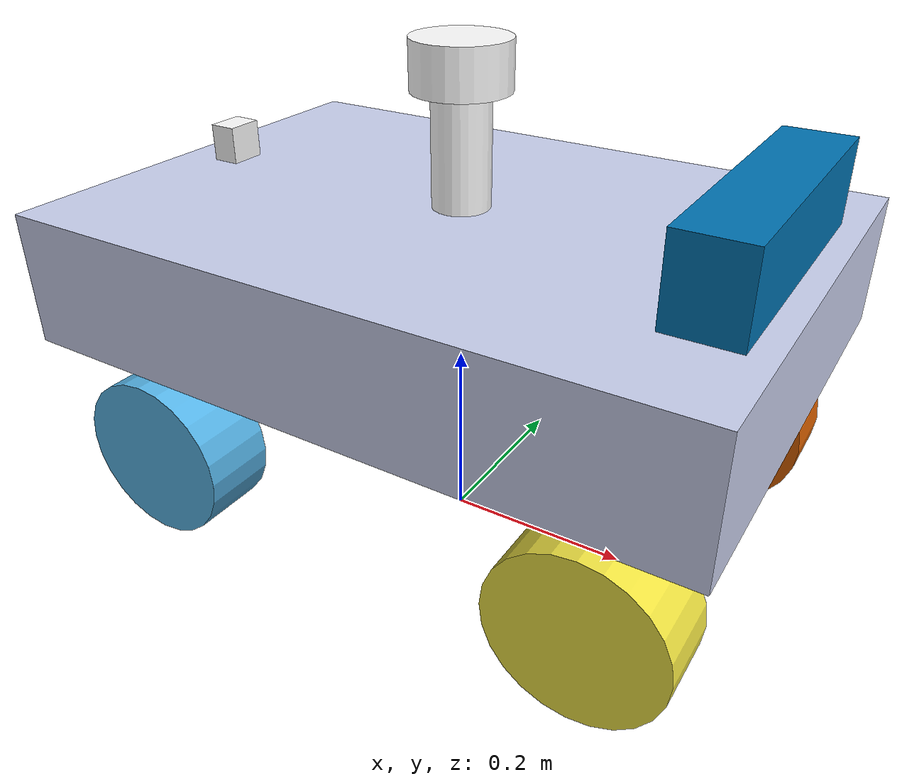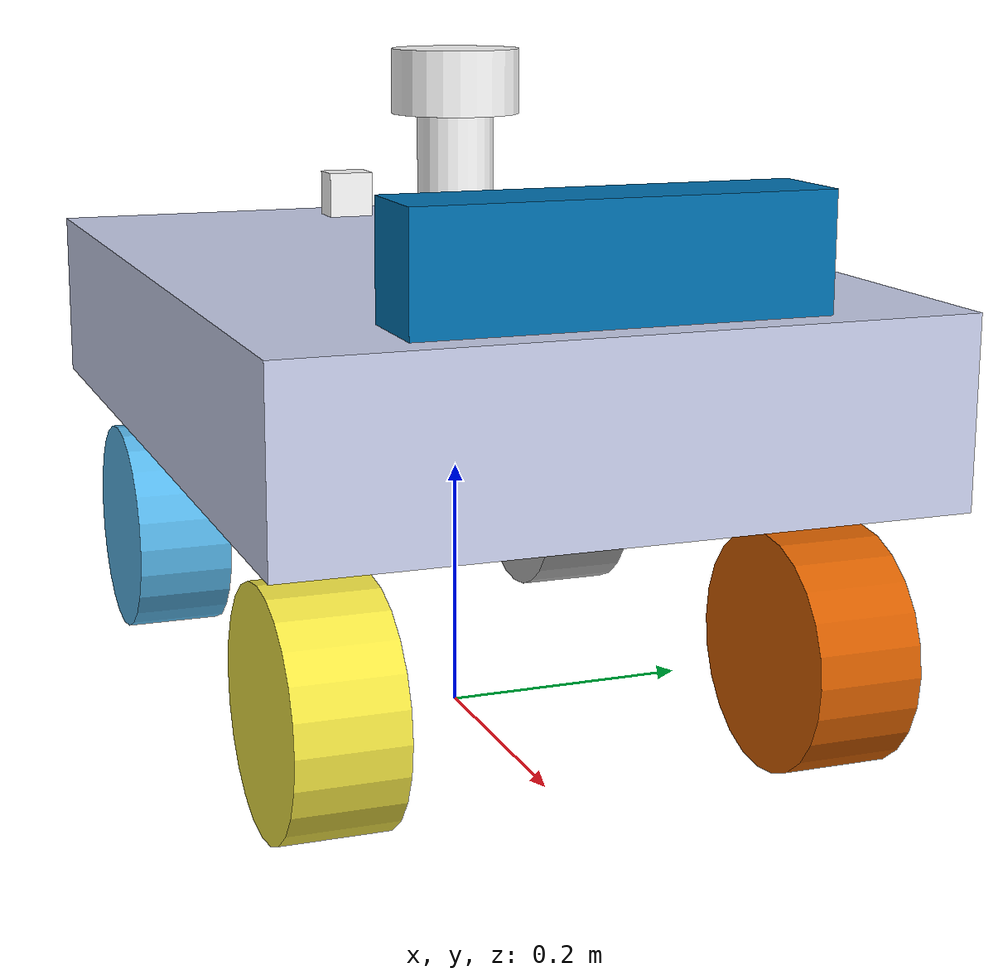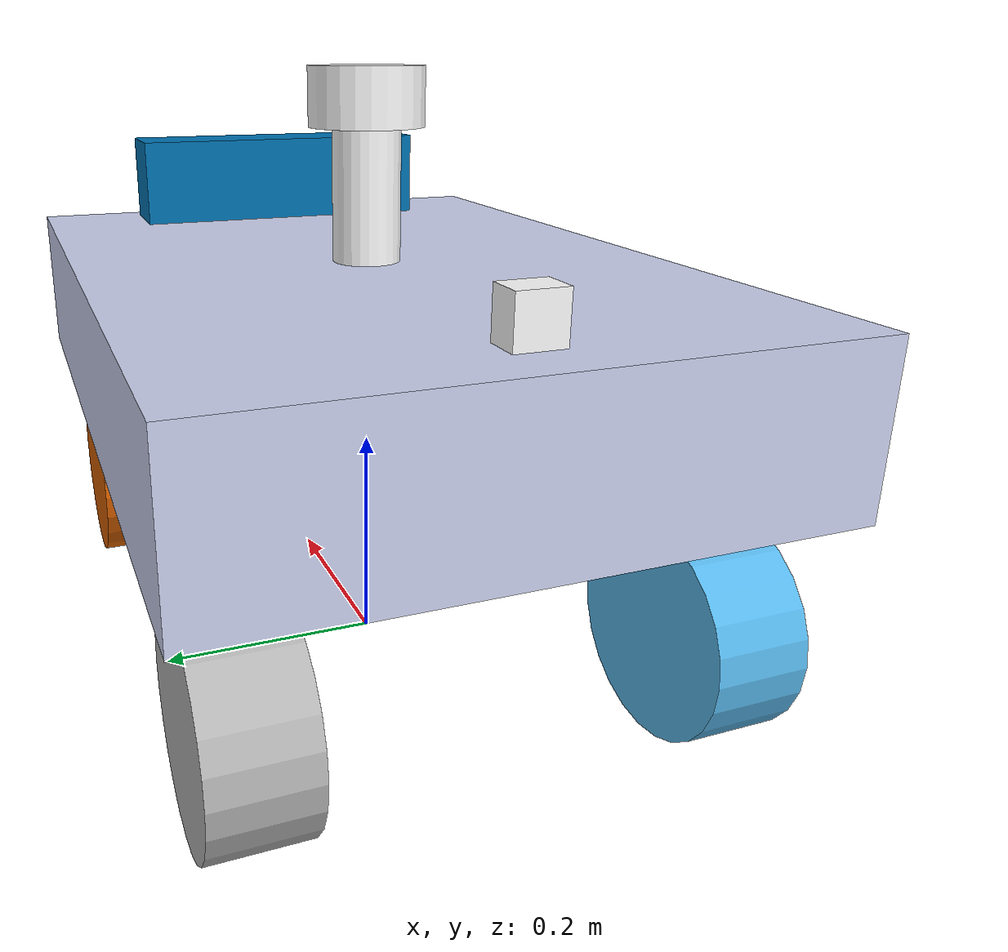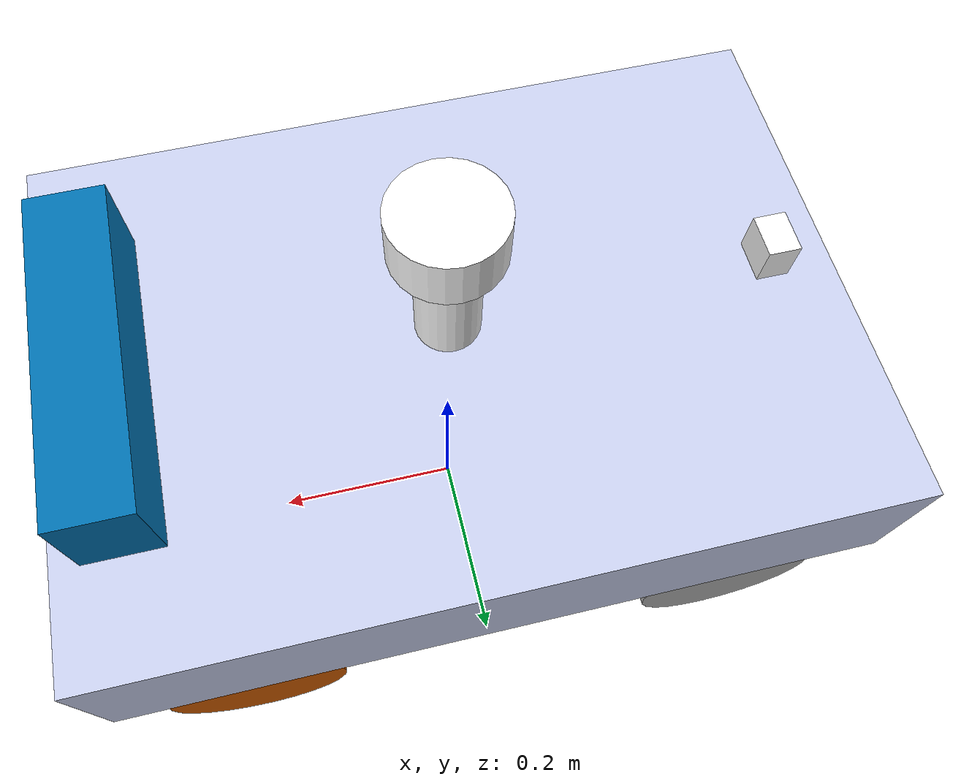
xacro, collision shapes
<?xml version="1.0" encoding="utf-8"?>
<robot name="ranger_mini_v3"
  xmlns:xacro="http://ros.org/wiki/xacro">

  <link name="base_footprint">
    <visual>
      <origin xyz="0 0 0" rpy="0 0 0"/>
      <geometry>
        <box size="0.001 0.001 0.001"/>
      </geometry>
    </visual>
  </link>
  <gazebo reference="base_footprint">
    <turnGravityOff>false</turnGravityOff>
  </gazebo>

  <joint name="base_footprint_joint" type="fixed">
    <origin xyz="0 0 0.30" rpy="0 0 0"/>
    <parent link="base_footprint"/>
    <child link="base_link"/>
  </joint>

  <link name="base_link">
    <inertial>
      <origin xyz="-0.0242698272228022 -0.0030308024613212 0.0544267444673498" rpy="0 0 0" />
      <mass value="10" />
      <inertia ixx="0.1354" ixy="0.0" ixz="0.0" iyy="0.2417" iyz="0.0" izz="0.3085"/>
    </inertial>
    <visual>
      <origin xyz="0 0 0.07" rpy="0 0 0" />
      <geometry>
        <mesh filename="package://ranger_mini_v3/meshes/ranger_base.dae" scale="1000 1000 1000" />
      </geometry>
      <material name="">
        <color rgba="0.792156862745098 0.819607843137255 0.933333333333333 1" />
      </material>
    </visual>
    <collision>
      <origin xyz="0 0 0" rpy="0 0 0" />
      <geometry>
        <box size="0.72 0.5 0.14"/>
      </geometry>
    </collision>

  </link>
  <link name="fr_steering_wheel_link">
    <inertial>
      <origin xyz="1.8493E-05 1.2713E-06 0.043679" rpy="0 0 0" />
      <mass value="1" />
      <inertia ixx="0.0063625" ixy="-1.0581E-07" ixz="-4.0831E-07" iyy="0.006363" iyz="-3.4944E-08" izz="0.010465" />
    </inertial>
    <visual>
      <origin xyz="0 0 0" rpy="0 0 0" />
      <geometry>
        <mesh filename="package://ranger_mini_v3/meshes/steering_wheel.dae" scale="10 10 10"/>
      </geometry>
      <material name="">
        <color rgba="0.79216 0.81961 0.93333 1" />
      </material>
    </visual>
    <collision>
      <origin xyz="0 0 0" rpy="0 0 0" />
      <geometry>
        <cylinder radius="0.001" length="0.001"/>
      </geometry>
    </collision>
  </link>
  <joint name="fr_steering_joint" type="revolute">
    <origin xyz="0.25 -0.19 -0.07" rpy="0 0 0" />
    <parent link="base_link" />
    <child link="fr_steering_wheel_link" />
    <axis xyz="0 0 1" />
    <limit effort="5" velocity="6.28" lower="-2.1" upper="2.1" />

  </joint>

  <link name="fr_wheel_link">
    <inertial>
      <mass value="8" />
      <origin xyz="0 0 0" />
      <inertia ixx="0.02047" ixy="0.0" ixz="0.0" iyy="0.02047" iyz="0.0" izz="0.0324"/>
    </inertial>
    <visual>
      <origin xyz="0 0 0" rpy="3.14 0 0" />
      <geometry>
        <mesh filename="package://ranger_mini_v3/meshes/wheel_v3.dae" scale="10 10 10"/>
      </geometry>
    </visual>
    <collision>
      <origin xyz="0 0 -0.005" rpy="1.57 0 0" />
      <geometry>
        <cylinder length="0.08" radius="0.09" />
      </geometry>
      <surface>
        <friction>
          <ode>
            <mu>5.0</mu>
            <mu2>5.0</mu2>
          </ode>
        </friction>
        <contact>
          <ode>
            <slip1>0.001</slip1>
            <slip2>0.001</slip2>
            <min_depth>0.001</min_depth>
          </ode>
        </contact>
      </surface>
    </collision>
  </link>

  <joint name="fr_wheel" type="continuous">
    <origin xyz="0.0 0.0 -0.12" rpy="0 0 0" />
    <parent link="fr_steering_wheel_link"/>
    <child link="fr_wheel_link"/>
    <axis xyz="0 1 0" rpy="0 0 0" />
  </joint>

  <link name="fl_steering_wheel_link">
    <inertial>
      <origin xyz="-0.0017956 -9.6304E-08 0.043642" rpy="0 0 0" />
      <mass value="1" />
      <inertia ixx="0.0063695" ixy="-2.1067E-08" ixz="-0.00016867" iyy="0.006363" iyz="-1.0301E-08" izz="0.010458" />
    </inertial>
    <visual>
      <origin xyz="0 0 0" rpy="0 0 3.14" />
      <geometry>
        <mesh filename="package://ranger_mini_v3/meshes/steering_wheel.dae" scale="10 10 10"/>
      </geometry>
      <material name="">
        <color rgba="0.79216 0.81961 0.93333 1" />
      </material>
    </visual>
    <collision>
      <origin xyz="0 0 0" rpy="0 0 0" />
      <geometry>
        <cylinder radius="0.001" length="0.001"/>
      </geometry>
    </collision>
  </link>
  <joint name="fl_steering_joint" type="revolute">
    <origin xyz="0.25 0.19 -0.07" rpy="0 0 0" />
    <parent link="base_link" />
    <child link="fl_steering_wheel_link" />
    <axis xyz="0 0 1" />
    <limit effort="5" velocity="6.28" lower="-2.1" upper="2.1" />

  </joint>

  <link name="fl_wheel_link">
    <inertial>
      <mass value="8" />
      <origin xyz="0 0 0" />
      <inertia ixx="0.02047" ixy="0.0" ixz="0.0" iyy="0.02047" iyz="0.0" izz="0.0324"/>
    </inertial>
    <visual>
      <origin xyz="0 0 0" rpy="0 0 0" />
      <geometry>
        <mesh filename="package://ranger_mini_v3/meshes/wheel_v3.dae" scale="10 10 10"/>
      </geometry>
    </visual>
    <collision>
      <origin xyz="0 0 -0.005" rpy="1.57 0 0" />
      <geometry>
        <cylinder length="0.08" radius="0.09" />
      </geometry>
      <surface>
        <friction>
          <ode>
            <mu>5.0</mu>
            <mu2>5.0</mu2>
          </ode>
        </friction>
        <contact>
          <ode>
            <slip1>0.001</slip1>
            <slip2>0.001</slip2>
            <min_depth>0.001</min_depth>
          </ode>
        </contact>
      </surface>
    </collision>
  </link>

  <joint name="fl_wheel" type="continuous">
    <origin xyz="0.0 0.0 -0.12" rpy="0 0 0" />
    <parent link="fl_steering_wheel_link"/>
    <child link="fl_wheel_link"/>
    <axis xyz="0 1 0" rpy="0 0 0" />
  </joint>

  <link name="rl_steering_wheel_link">
    <inertial>
      <origin xyz="-0.00017093 6.1255E-08 0.043678" rpy="0 0 0" />
      <mass value="1" />
      <inertia ixx="0.0063627" ixy="-2.1069E-08" ixz="-1.587E-05" iyy="0.006363" iyz="9.3201E-09" izz="0.010465" />
    </inertial>
    <visual>
      <origin xyz="0 0 0" rpy="0 0 3.14" />
      <geometry>
        <mesh filename="package://ranger_mini_v3/meshes/steering_wheel.dae" scale="10 10 10"/>
      </geometry>
      <material name="">
        <color rgba="0.79216 0.81961 0.93333 1" />
      </material>
    </visual>
    <collision>
      <origin xyz="0 0 0" rpy="0 0 0" />
      <geometry>
        <cylinder radius="0.001" length="0.001"/>
      </geometry>
    </collision>
  </link>

  <joint name="rl_steering_joint" type="revolute">
    <origin xyz="-0.25 0.19 -0.07" rpy="0 0 0" />
    <parent link="base_link" />
    <child link="rl_steering_wheel_link" />
    <axis xyz="0 0 1" />
    <limit effort="5" velocity="6.28" lower="-2.1" upper="2.1" />
  </joint>

  <link name="rl_wheel_link">
    <inertial>
      <mass value="8" />
      <origin xyz="0 0 0" />
      <inertia ixx="0.02047" ixy="0.0" ixz="0.0" iyy="0.02047" iyz="0.0" izz="0.0324"/>
    </inertial>
    <visual>
      <origin xyz="0 0 0" rpy="0 0 0" />
      <geometry>
        <mesh filename="package://ranger_mini_v3/meshes/wheel_v3.dae" scale="10 10 10"/>
      </geometry>
    </visual>
    <collision>
      <origin xyz="0.00 0.00 -0.005" rpy="1.57 0 0" />
      <geometry>
        <cylinder length="0.08" radius="0.09" />
      </geometry>
      <surface>
        <friction>
          <ode>
            <mu>5.0</mu>
            <mu2>5.0</mu2>
          </ode>
        </friction>
        <contact>
          <ode>
            <slip1>0.001</slip1>
            <slip2>0.001</slip2>
            <min_depth>0.001</min_depth>
          </ode>
        </contact>
      </surface>
    </collision>
  </link>

  <joint name="rl_wheel" type="continuous">
    <origin xyz="0.0 0.0 -0.12 " rpy="0 0 0" />
    <parent link="rl_steering_wheel_link"/>
    <child link="rl_wheel_link"/>
    <axis xyz="0 1 0" rpy="0 0 0" />
  </joint>

  <link name="rr_steering_wheel_link">
    <inertial>
      <origin xyz="0.0 0.0 0.0"/>
      <mass value="1"/>
      <inertia ixx="0.01" ixy="0.0" ixz="0.0" iyy="0.01" iyz="0.0" izz="0.01"/>
    </inertial>
    <visual>
      <origin xyz="0 0 0" rpy="0 0 0" />
      <geometry>
        <mesh filename="package://ranger_mini_v3/meshes/steering_wheel.dae" scale="10 10 10"/>
      </geometry>
    </visual>
    <collision>
      <origin xyz="0 0 0" rpy="0 0 0" />
      <geometry>
        <cylinder radius="0.001" length="0.001"/>
      </geometry>
    </collision>
  </link>
  <joint name="rr_steering_joint" type="revolute">
    <origin xyz="-0.25 -0.19 -0.07" rpy="0 0 0" />
    <parent link="base_link"/>
    <child link="rr_steering_wheel_link"/>
    <axis xyz="0 0 1" rpy="0 0 0" />
    <limit effort="5" velocity="6.28" lower="-2.1" upper="2.1" />
  </joint>

  <link name="rr_wheel_link">
    <inertial>
      <mass value="8" />
      <origin xyz="0 0 0" />
      <inertia ixx="0.02047" ixy="0.0" ixz="0.0" iyy="0.02047" iyz="0.0" izz="0.0324"/>
    </inertial>
    <visual>
      <origin xyz="0.0 0.0 0.0" rpy="3.14 0 0" />
      <geometry>
        <mesh filename="package://ranger_mini_v3/meshes/wheel_v3.dae" scale="10 10 10"/>
      </geometry>
    </visual>
    <collision>
      <origin xyz="0.0 0.0 -0.005" rpy="1.57 0 0" />
      <geometry>
        <cylinder length="0.08" radius="0.09" />
      </geometry>
      <surface>
        <friction>
          <ode>
            <mu>5.0</mu>
            <mu2>5.0</mu2>
          </ode>
        </friction>
        <contact>
          <ode>
            <slip1>0.001</slip1>
            <slip2>0.001</slip2>
            <min_depth>0.001</min_depth>
          </ode>
        </contact>
      </surface>
    </collision>
  </link>

  <joint name="rr_wheel" type="continuous">
    <origin xyz="0.0 0.0 -0.12 " rpy="0 0 0" />
    <parent link="rr_steering_wheel_link"/>
    <child link="rr_wheel_link"/>
    <axis xyz="0 1 0" rpy="0 0 0" />
  </joint>

  <!-- Laser支架 -->
  <link name="laser_stand_link">
    <visual>
      <origin xyz="0 0 0" rpy="0 0 0" />
      <geometry>
        <cylinder length="0.12" radius="0.03"/>
      </geometry>
      <material name="white">
        <color rgba="1 1 1 0.9"/>
      </material>
    </visual>
    <collision>
      <origin xyz="0 0 0" rpy="0 0 0" />
      <geometry>
        <cylinder length="0.12" radius="0.03"/>
      </geometry>
    </collision>
    <inertial>
      <mass value="0.1" />
      <origin xyz="0 0 0" />
      <inertia ixx="0.001" ixy="0.0" ixz="0.0" iyy="0.001" iyz="0.0" izz="0.001" />
    </inertial>
  </link>

  <joint name="laser_stand_joint" type="fixed">
    <origin xyz="0 0 0.13" rpy="0 0 0" />
    <parent link="base_link"/>
    <child link="laser_stand_link" />
  </joint>
  <!-- 传感器参数 -->
  <xacro:property name="M_PI" value="3.1415926" />
  <xacro:property name="camera_joint_x" value="-0.30" />
  <xacro:property name="camera_joint_y" value="0.0" />
  <xacro:property name="camera_joint_z" value="0.09" />

  <xacro:property name="kinect_joint_x" value="0.30" />
  <xacro:property name="kinect_joint_y" value="0.0" />
  <xacro:property name="kinect_joint_z" value="0.11" />

  <xacro:property name="laser_joint_x" value="0.0" />
  <xacro:property name="laser_joint_y" value="0.0" />
  <xacro:property name="laser_joint_z" value="0.08" />
  <xacro:property name="imu_joint_x" value="0.0" />
  <xacro:property name="imu_joint_y" value="0.0" />
  <xacro:property name="imu_joint_z" value="0.12" />
  <!-- 传感器集成 -->
  <xacro:include filename="$(find ranger_mini_v3)/urdf/sensor/camera.xacro" />
  <xacro:usb_camera joint_x="${camera_joint_x}" joint_y="${camera_joint_y}" joint_z="${camera_joint_z}"/>

  <xacro:include filename="$(find ranger_mini_v3)/urdf/sensor/kinect.xacro" />
  <xacro:kinect joint_x="${kinect_joint_x}" joint_y="${kinect_joint_y}" joint_z="${kinect_joint_z}"/>

  <xacro:include filename="$(find ranger_mini_v3)/urdf/sensor/laser.xacro" />
  <xacro:laser joint_x="${laser_joint_x}" joint_y="${laser_joint_y}" joint_z="${laser_joint_z}" parent_link="laser_stand_link"/>

  <xacro:include filename="$(find ranger_mini_v3)/urdf/sensor/imu.xacro" />
  <xacro:imu joint_x="${imu_joint_x}" joint_y="${imu_joint_y}" joint_z="${imu_joint_z}" parent_link="base_link"/>

  <transmission name="fl_steering_wheel_trans">
    <type>transmission_interface/SimpleTransmission</type>
    <joint name="fl_steering_joint">
      <hardwareInterface>hardware_interface/PositionJointInterface</hardwareInterface>
    </joint>
    <actuator name="fl_steering_wheel_motor">
      <hardwareInterface>hardware_interface/PositionJointInterface</hardwareInterface>
      <mechanicalReduction>30</mechanicalReduction>
    </actuator>
  </transmission>

  <transmission name="fr_steering_wheel_trans">
    <type>transmission_interface/SimpleTransmission</type>
    <joint name="fr_steering_joint">
      <hardwareInterface>hardware_interface/PositionJointInterface</hardwareInterface>
    </joint>
    <actuator name="fr_steering_wheel_motor">
      <hardwareInterface>hardware_interface/PositionJointInterface</hardwareInterface>
      <mechanicalReduction>30</mechanicalReduction>
    </actuator>
  </transmission>

  <transmission name="rl_steering_wheel_trans">
    <type>transmission_interface/SimpleTransmission</type>
    <joint name="rl_steering_joint">
      <hardwareInterface>hardware_interface/PositionJointInterface</hardwareInterface>
    </joint>
    <actuator name="rl_steering_wheel_motor">
      <hardwareInterface>hardware_interface/PositionJointInterface</hardwareInterface>
      <mechanicalReduction>30</mechanicalReduction>
    </actuator>
  </transmission>

  <transmission name="rr_steering_wheel_trans">
    <type>transmission_interface/SimpleTransmission</type>
    <joint name="rr_steering_joint">
      <hardwareInterface>hardware_interface/PositionJointInterface</hardwareInterface>
    </joint>
    <actuator name="rr_steering_wheel_motor">
      <hardwareInterface>hardware_interface/PositionJointInterface</hardwareInterface>
      <mechanicalReduction>30</mechanicalReduction>
    </actuator>
  </transmission>

  <transmission name="fl_wheel_trans">
    <type>transmission_interface/SimpleTransmission</type>
    <joint name="fl_wheel">
      <hardwareInterface>hardware_interface/VelocityJointInterface</hardwareInterface>
    </joint>
    <actuator name="fl_wheel_motor">
      <hardwareInterface>hardware_interface/VelocityJointInterface</hardwareInterface>
      <mechanicalReduction>30</mechanicalReduction>
    </actuator>
  </transmission>

  <transmission name="fr_wheel_trans">
    <type>transmission_interface/SimpleTransmission</type>
    <joint name="fr_wheel">
      <hardwareInterface>hardware_interface/VelocityJointInterface</hardwareInterface>
    </joint>
    <actuator name="fr_wheel_motor">
      <hardwareInterface>hardware_interface/VelocityJointInterface</hardwareInterface>
      <mechanicalReduction>30</mechanicalReduction>
    </actuator>
  </transmission>

  <transmission name="rl_wheel_trans">
    <type>transmission_interface/SimpleTransmission</type>
    <joint name="rl_wheel">
      <hardwareInterface>hardware_interface/VelocityJointInterface</hardwareInterface>
    </joint>
    <actuator name="rl_wheel_motor">
      <hardwareInterface>hardware_interface/VelocityJointInterface</hardwareInterface>
      <mechanicalReduction>30</mechanicalReduction>
    </actuator>
  </transmission>

  <transmission name="rr_wheel_trans">
    <type>transmission_interface/SimpleTransmission</type>
    <joint name="rr_wheel">
      <hardwareInterface>hardware_interface/VelocityJointInterface</hardwareInterface>
    </joint>
    <actuator name="rr_wheel_motor">
      <hardwareInterface>hardware_interface/VelocityJointInterface</hardwareInterface>
      <mechanicalReduction>30</mechanicalReduction>
    </actuator>
  </transmission>
  <gazebo>
    <plugin name="gazebo_ros_control" filename="libgazebo_ros_control.so">
    </plugin>
  </gazebo>

</robot>

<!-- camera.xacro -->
<robot name="ranger_mini"
    xmlns:xacro="http://www.ros.org/wiki/xacro">

    <xacro:macro name="usb_camera" params="joint_x joint_y joint_z">
        <joint name="camera_joint" type="fixed">
            <origin xyz="${joint_x} ${joint_y} ${joint_z}" rpy="0 0 ${M_PI}" />
            <parent link="base_link"/>
            <child link="camera_link" />
        </joint>

        <link name="camera_link">
            <visual>
                <origin xyz="0 0 0" rpy="0 0 0" />
                <geometry>
                    <box size="0.03 0.04 0.04" />
                </geometry>
                <material name="white">
                    <color rgba="1 1 1 0.9"/>
                </material>
            </visual>
            <collision>
                <origin xyz="0.0 0.0 0.0" rpy="0 0 0" />
                <geometry>
                    <box size="0.03 0.04 0.04" />
                </geometry>
            </collision>

            <inertial>
                <mass value="0.1" />
                <origin xyz="0 0 0" />
                <inertia ixx="0.01" ixy="0.0" ixz="0.0" iyy="0.01" iyz="0.0" izz="0.01" />
            </inertial>

        </link>

        <gazebo reference="camera_link">
            <material>Gazebo/White</material>
        </gazebo>

        <gazebo reference="camera_link">
            <sensor type="camera" name="camera_node">
                <update_rate>30.0</update_rate>
                <camera name="head">
                    <horizontal_fov>1.3962634</horizontal_fov>
                    <image>
                        <width>1280</width>
                        <height>720</height>
                        <format>R8G8B8</format>
                    </image>
                    <clip>
                        <near>0.02</near>
                        <far>300</far>
                    </clip>
                    <noise>
                        <type>gaussian</type>
                        <mean>0.0</mean>
                        <stddev>0.007</stddev>
                    </noise>
                </camera>
                <plugin name="gazebo_camera" filename="libgazebo_ros_camera.so">
                    <cameraName>usb_camera</cameraName>
                    <imageTopicName>image_raw</imageTopicName>
                    <cameraInfoTopicName>camera_info</cameraInfoTopicName>
                    <frameName>camera_link</frameName>
                </plugin>
            </sensor>
        </gazebo>
    </xacro:macro>
</robot>

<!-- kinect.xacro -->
<robot name="ranger_mini"
  xmlns:xacro="http://www.ros.org/wiki/xacro">

  <xacro:macro name="kinect" params="joint_x joint_y joint_z">
    <joint name="kinect_joint" type="fixed">
      <origin xyz="${joint_x} ${joint_y} ${joint_z}" rpy="0 0 0" />
      <parent link="base_link"/>
      <child link="kinect_link" />
    </joint>

    <link name="kinect_link">
      <visual>
        <origin xyz="0 0 0" rpy="0 0 0" />
        <geometry>
          <box size="0.07 0.3 0.09" />
        </geometry>
      </visual>
      <collision>
        <geometry>
          <box size="0.07 0.3 0.09"/>
        </geometry>
      </collision>
    </link>

    <joint name="kinect_optical_joint" type="fixed">
      <origin xyz="0 0 0" rpy="-1.5708 0 -1.5708"/>
      <parent link="kinect_link"/>
      <child link="kinect_frame_optical"/>
    </joint>

    <link name="kinect_frame_optical"/>

    <gazebo reference="kinect_link">
      <sensor type="depth" name="kinect">
        <always_on>true</always_on>
        <update_rate>20.0</update_rate>
        <camera>
          <horizontal_fov>${60.0*M_PI/180.0}</horizontal_fov>
          <image>
            <format>R8G8B8</format>
            <width>640</width>
            <height>480</height>
          </image>
          <clip>
            <near>0.05</near>
            <far>8.0</far>
          </clip>
        </camera>
        <plugin name="kinect_kinect_controller" filename="libgazebo_ros_openni_kinect.so">
          <cameraName>kinect</cameraName>
          <alwaysOn>true</alwaysOn>
          <updateRate>10</updateRate>
          <imageTopicName>rgb/image_raw</imageTopicName>
          <depthImageTopicName>depth/image_raw</depthImageTopicName>
          <pointCloudTopicName>depth/points</pointCloudTopicName>
          <cameraInfoTopicName>rgb/camera_info</cameraInfoTopicName>
          <depthImageCameraInfoTopicName>depth/camera_info</depthImageCameraInfoTopicName>
          <frameName>kinect_frame_optical</frameName>
          <baseline>0.1</baseline>
          <distortion_k1>0.0</distortion_k1>
        </plugin>
      </sensor>
    </gazebo>
  </xacro:macro>
</robot>

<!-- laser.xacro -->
<robot name="ranger_mini"
  xmlns:xacro="http://www.ros.org/wiki/xacro">

  <xacro:macro name="laser" params="joint_x joint_y joint_z parent_link">
    <joint name="laser_joint" type="fixed">
      <origin xyz="${joint_x} ${joint_y} ${joint_z}" rpy="0 0 0" />
      <parent link="${parent_link}"/>
      <child link="laser_link" />
    </joint>

    <link name="laser_link">
      <visual>
        <origin xyz="0 0 0" rpy="0 0 0" />
        <geometry>
          <cylinder length="0.05" radius="0.05"/>
        </geometry>
        <material name="white">
          <color rgba="1 1 1 0.9"/>
        </material>
      </visual>
      <collision>
        <origin xyz="0.0 0.0 0.0" rpy="0 0 0" />
        <geometry>
          <cylinder length="0.05" radius="0.05"/>
        </geometry>
      </collision>
      <inertial>
        <mass value="0.2" />
        <origin xyz="0 0 0" />
        <inertia ixx="0.02" ixy="0.0" ixz="0.0" iyy="0.02" iyz="0.0" izz="0.02" />
      </inertial>
    </link>

    <gazebo reference="laser_link">
      <material>Gazebo/white</material>
    </gazebo>

    <gazebo reference="laser_link">
      <sensor type="gpu_ray" name="rplidar">
        <pose>0 0 0 0 0 0</pose>
        <visualize>false</visualize>
        <update_rate>15.0</update_rate>
        <ray>
          <scan>
            <horizontal>
              <samples>720</samples>
              <resolution>1</resolution>
              <min_angle>-3.1415926</min_angle>
              <max_angle>3.1415926</max_angle>
            </horizontal>
          </scan>
          <range>
            <min>0.10</min>
            <max>25.0</max>
            <resolution>0.01</resolution>
          </range>
          <noise>
            <type>gaussian</type>
            <mean>0.0</mean>
            <stddev>0.01</stddev>
          </noise>
        </ray>
        <plugin name="gazebo_laser" filename="libgazebo_ros_gpu_laser.so">
          <topicName>scan</topicName>
          <frameName>laser_link</frameName>
        </plugin>
      </sensor>
    </gazebo>
  </xacro:macro>
</robot>

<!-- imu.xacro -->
<robot name="ranger_mini"
  xmlns:xacro="http://www.ros.org/wiki/xacro">

  <xacro:macro name="imu" params="joint_x joint_y joint_z parent_link">
    <joint name="imu_joint" type="fixed">
      <origin xyz="${joint_x} ${joint_y} ${joint_z}" rpy="0 0 0" />
      <parent link="${parent_link}"/>
      <child link="imu_link" />
    </joint>

    <link name="imu_link">
      <visual>
        <origin xyz="0 0 0" rpy="0 0 0" />
        <geometry>
          <box size="0.03 0.02 0.01"/>
        </geometry>
        <material name="white">
          <color rgba="1 1 1 0.9"/>
        </material>
      </visual>
      <collision>
        <origin xyz="0 0 0" rpy="0 0 0" />
        <geometry>
          <box size="0.03 0.02 0.01"/>
        </geometry>
      </collision>
      <inertial>
        <mass value="0.05" />
        <origin xyz="0 0 0" />
        <inertia ixx="0.0001" ixy="0.0" ixz="0.0" iyy="0.0001" iyz="0.0" izz="0.0001" />
      </inertial>
    </link>

    <gazebo reference="imu_link">
      <sensor name="imu_sensor" type="imu">
        <always_on>true</always_on>
        <update_rate>100.0</update_rate>
        <visualize>false</visualize>
        <plugin name="imu_plugin" filename="libgazebo_ros_imu_sensor.so">
          <topicName>/imu/data</topicName>
          <bodyName>imu_link</bodyName>
          <updateRateHZ>100.0</updateRateHZ>
          <gaussianNoise>0.01</gaussianNoise>
          <xyzOffset>0 0 0</xyzOffset>
          <rpyOffset>0 0 0</rpyOffset>
          <frameName>imu_link</frameName>
        </plugin>
      </sensor>
    </gazebo>
  </xacro:macro>
</robot>
